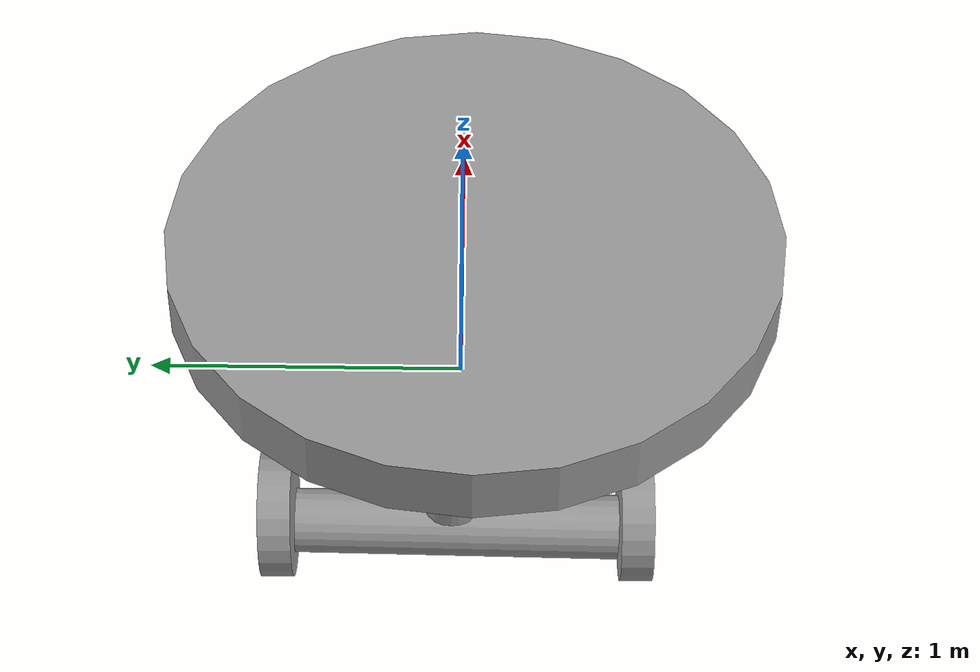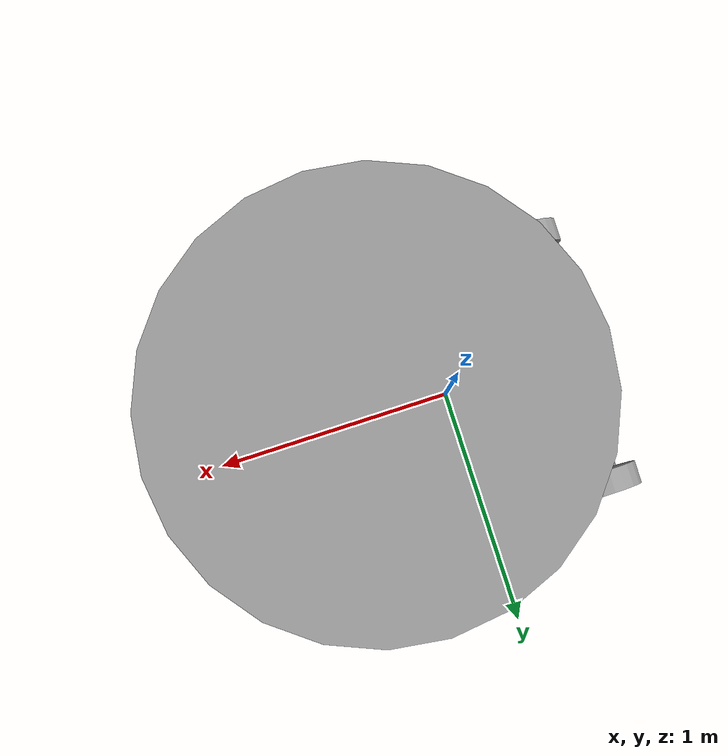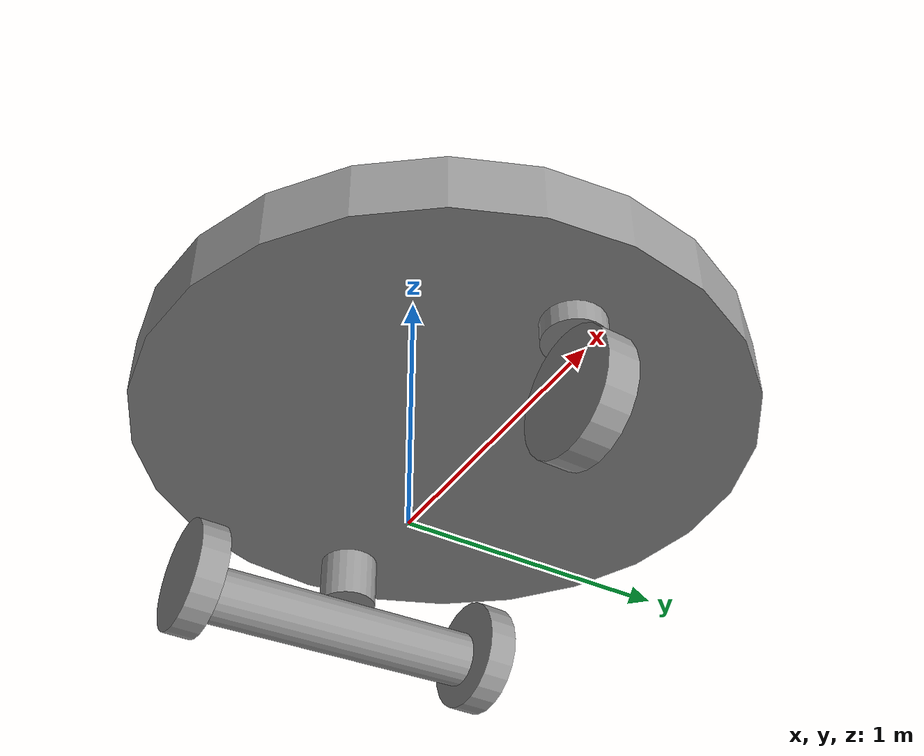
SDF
<?xml version='1.0'?>
<sdf version='1.6'>
  <model name='myRobot'>
    <link name='link_0'>
      <pose frame=''>-0.499455 0.563736 -0.119581 -1.587 0 0</pose>
      <inertial>
        <mass>1</mass>
        <inertia>
          <ixx>0.145833</ixx>
          <ixy>0</ixy>
          <ixz>0</ixz>
          <iyy>0.145833</iyy>
          <iyz>0</iyz>
          <izz>0.125</izz>
        </inertia>
        <pose frame=''>0 0 0 0 -0 0</pose>
      </inertial>
      <gravity>1</gravity>
      <self_collide>0</self_collide>
      <kinematic>0</kinematic>
      <visual name='visual'>
        <pose frame=''>0 0 0 0 -0 0</pose>
        <geometry>
          <cylinder>
            <radius>0.2</radius>
            <length>0.1</length>
          </cylinder>
        </geometry>
        <material>
          <lighting>1</lighting>
          <script>
            <uri>file://media/materials/scripts/gazebo.material</uri>
            <name>Gazebo/Grey</name>
          </script>
          <shader type='pixel'>
            <normal_map>__default__</normal_map>
          </shader>
          <ambient>0.3 0.3 0.3 1</ambient>
          <diffuse>0.7 0.7 0.7 1</diffuse>
          <specular>0.01 0.01 0.01 1</specular>
          <emissive>0 0 0 1</emissive>
        </material>
        <transparency>0</transparency>
        <cast_shadows>1</cast_shadows>
      </visual>
      <collision name='collision'>
        <laser_retro>0</laser_retro>
        <max_contacts>10</max_contacts>
        <pose frame=''>0 0 0 0 -0 0</pose>
        <geometry>
          <cylinder>
            <radius>0.2</radius>
            <length>0.1</length>
          </cylinder>
        </geometry>
        <surface>
          <friction>
            <ode>
              <mu>1</mu>
              <mu2>1</mu2>
              <fdir1>0 0 0</fdir1>
              <slip1>0</slip1>
              <slip2>0</slip2>
            </ode>
            <torsional>
              <coefficient>1</coefficient>
              <patch_radius>0</patch_radius>
              <surface_radius>0</surface_radius>
              <use_patch_radius>1</use_patch_radius>
              <ode>
                <slip>0</slip>
              </ode>
            </torsional>
          </friction>
          <bounce>
            <restitution_coefficient>0</restitution_coefficient>
            <threshold>1e+06</threshold>
          </bounce>
          <contact>
            <collide_without_contact>0</collide_without_contact>
            <collide_without_contact_bitmask>1</collide_without_contact_bitmask>
            <collide_bitmask>1</collide_bitmask>
            <ode>
              <soft_cfm>0</soft_cfm>
              <soft_erp>0.2</soft_erp>
              <kp>1e+13</kp>
              <kd>1</kd>
              <max_vel>0.01</max_vel>
              <min_depth>0</min_depth>
            </ode>
            <bullet>
              <split_impulse>1</split_impulse>
              <split_impulse_penetration_threshold>-0.01</split_impulse_penetration_threshold>
              <soft_cfm>0</soft_cfm>
              <soft_erp>0.2</soft_erp>
              <kp>1e+13</kp>
              <kd>1</kd>
            </bullet>
          </contact>
        </surface>
      </collision>
    </link>
    <link name='link_0_clone'>
      <pose frame=''>-0.499455 -0.546652 -0.12031 -1.587 0 0</pose>
      <inertial>
        <mass>1</mass>
        <inertia>
          <ixx>0.145833</ixx>
          <ixy>0</ixy>
          <ixz>0</ixz>
          <iyy>0.145833</iyy>
          <iyz>0</iyz>
          <izz>0.125</izz>
        </inertia>
        <pose frame=''>0 0 0 0 -0 0</pose>
      </inertial>
      <self_collide>0</self_collide>
      <kinematic>0</kinematic>
      <visual name='visual'>
        <pose frame=''>0 0 0 0 -0 0</pose>
        <geometry>
          <cylinder>
            <radius>0.2</radius>
            <length>0.1</length>
          </cylinder>
        </geometry>
        <material>
          <lighting>1</lighting>
          <script>
            <uri>file://media/materials/scripts/gazebo.material</uri>
            <name>Gazebo/Grey</name>
          </script>
          <shader type='pixel'>
            <normal_map>__default__</normal_map>
          </shader>
          <ambient>0.3 0.3 0.3 1</ambient>
          <diffuse>0.7 0.7 0.7 1</diffuse>
          <specular>0.01 0.01 0.01 1</specular>
          <emissive>0 0 0 1</emissive>
        </material>
        <transparency>0</transparency>
        <cast_shadows>1</cast_shadows>
      </visual>
      <collision name='collision'>
        <laser_retro>0</laser_retro>
        <max_contacts>10</max_contacts>
        <pose frame=''>0 0 0 0 -0 0</pose>
        <geometry>
          <cylinder>
            <radius>0.2</radius>
            <length>0.1</length>
          </cylinder>
        </geometry>
        <surface>
          <friction>
            <ode>
              <mu>1</mu>
              <mu2>1</mu2>
              <fdir1>0 0 0</fdir1>
              <slip1>0</slip1>
              <slip2>0</slip2>
            </ode>
            <torsional>
              <coefficient>1</coefficient>
              <patch_radius>0</patch_radius>
              <surface_radius>0</surface_radius>
              <use_patch_radius>1</use_patch_radius>
              <ode>
                <slip>0</slip>
              </ode>
            </torsional>
          </friction>
          <bounce>
            <restitution_coefficient>0</restitution_coefficient>
            <threshold>1e+06</threshold>
          </bounce>
          <contact>
            <collide_without_contact>0</collide_without_contact>
            <collide_without_contact_bitmask>1</collide_without_contact_bitmask>
            <collide_bitmask>1</collide_bitmask>
            <ode>
              <soft_cfm>0</soft_cfm>
              <soft_erp>0.2</soft_erp>
              <kp>1e+13</kp>
              <kd>1</kd>
              <max_vel>0.01</max_vel>
              <min_depth>0</min_depth>
            </ode>
            <bullet>
              <split_impulse>1</split_impulse>
              <split_impulse_penetration_threshold>-0.01</split_impulse_penetration_threshold>
              <soft_cfm>0</soft_cfm>
              <soft_erp>0.2</soft_erp>
              <kp>1e+13</kp>
              <kd>1</kd>
            </bullet>
          </contact>
        </surface>
      </collision>
    </link>
    <link name='link_0_clone_0'>
      <pose frame=''>0.969821 -0.006851 -0.155114 -1.587 0 0</pose>
      <inertial>
        <mass>1</mass>
        <inertia>
          <ixx>0.145833</ixx>
          <ixy>0</ixy>
          <ixz>0</ixz>
          <iyy>0.145833</iyy>
          <iyz>0</iyz>
          <izz>0.125</izz>
        </inertia>
        <pose frame=''>0 0 0 0 -0 0</pose>
      </inertial>
      <self_collide>0</self_collide>
      <kinematic>0</kinematic>
      <visual name='visual'>
        <pose frame=''>0 0 0 0 -0 0</pose>
        <geometry>
          <cylinder>
            <radius>0.2</radius>
            <length>0.1</length>
          </cylinder>
        </geometry>
        <material>
          <lighting>1</lighting>
          <script>
            <uri>file://media/materials/scripts/gazebo.material</uri>
            <name>Gazebo/Grey</name>
          </script>
          <shader type='pixel'>
            <normal_map>__default__</normal_map>
          </shader>
          <ambient>0.3 0.3 0.3 1</ambient>
          <diffuse>0.7 0.7 0.7 1</diffuse>
          <specular>0.01 0.01 0.01 1</specular>
          <emissive>0 0 0 1</emissive>
        </material>
        <transparency>0</transparency>
        <cast_shadows>1</cast_shadows>
      </visual>
      <collision name='collision'>
        <laser_retro>0</laser_retro>
        <max_contacts>10</max_contacts>
        <pose frame=''>0 0 0 0 -0 0</pose>
        <geometry>
          <cylinder>
            <radius>0.2</radius>
            <length>0.1</length>
          </cylinder>
        </geometry>
        <surface>
          <friction>
            <ode>
              <mu>1</mu>
              <mu2>1</mu2>
              <fdir1>0 0 0</fdir1>
              <slip1>0</slip1>
              <slip2>0</slip2>
            </ode>
            <torsional>
              <coefficient>1</coefficient>
              <patch_radius>0</patch_radius>
              <surface_radius>0</surface_radius>
              <use_patch_radius>1</use_patch_radius>
              <ode>
                <slip>0</slip>
              </ode>
            </torsional>
          </friction>
          <bounce>
            <restitution_coefficient>0</restitution_coefficient>
            <threshold>1e+06</threshold>
          </bounce>
          <contact>
            <collide_without_contact>0</collide_without_contact>
            <collide_without_contact_bitmask>1</collide_without_contact_bitmask>
            <collide_bitmask>1</collide_bitmask>
            <ode>
              <soft_cfm>0</soft_cfm>
              <soft_erp>0.2</soft_erp>
              <kp>1e+13</kp>
              <kd>1</kd>
              <max_vel>0.01</max_vel>
              <min_depth>0</min_depth>
            </ode>
            <bullet>
              <split_impulse>1</split_impulse>
              <split_impulse_penetration_threshold>-0.01</split_impulse_penetration_threshold>
              <soft_cfm>0</soft_cfm>
              <soft_erp>0.2</soft_erp>
              <kp>1e+13</kp>
              <kd>1</kd>
            </bullet>
          </contact>
        </surface>
      </collision>
    </link>
    <link name='link_1'>
      <pose frame=''>-0.519455 0.008881 -0.140307 1.58773 -0 0</pose>
      <inertial>
        <mass>1</mass>
        <inertia>
          <ixx>0.145833</ixx>
          <ixy>0</ixy>
          <ixz>0</ixz>
          <iyy>0.145833</iyy>
          <iyz>0</iyz>
          <izz>0.125</izz>
        </inertia>
        <pose frame=''>0 0 0 0 -0 0</pose>
      </inertial>
      <gravity>1</gravity>
      <self_collide>0</self_collide>
      <kinematic>0</kinematic>
      <visual name='visual'>
        <pose frame=''>0 0 0 0 -0 0</pose>
        <geometry>
          <cylinder>
            <radius>0.1</radius>
            <length>1</length>
          </cylinder>
        </geometry>
        <material>
          <lighting>1</lighting>
          <script>
            <uri>file://media/materials/scripts/gazebo.material</uri>
            <name>Gazebo/Grey</name>
          </script>
          <shader type='pixel'>
            <normal_map>__default__</normal_map>
          </shader>
          <ambient>0.3 0.3 0.3 1</ambient>
          <diffuse>0.7 0.7 0.7 1</diffuse>
          <specular>0.01 0.01 0.01 1</specular>
          <emissive>0 0 0 1</emissive>
        </material>
        <transparency>0</transparency>
        <cast_shadows>1</cast_shadows>
      </visual>
      <collision name='collision'>
        <laser_retro>0</laser_retro>
        <max_contacts>10</max_contacts>
        <pose frame=''>0 0 0 0 -0 0</pose>
        <geometry>
          <cylinder>
            <radius>0.1</radius>
            <length>1</length>
          </cylinder>
        </geometry>
        <surface>
          <friction>
            <ode>
              <mu>1</mu>
              <mu2>1</mu2>
              <fdir1>0 0 0</fdir1>
              <slip1>0</slip1>
              <slip2>0</slip2>
            </ode>
            <torsional>
              <coefficient>1</coefficient>
              <patch_radius>0</patch_radius>
              <surface_radius>0</surface_radius>
              <use_patch_radius>1</use_patch_radius>
              <ode>
                <slip>0</slip>
              </ode>
            </torsional>
          </friction>
          <bounce>
            <restitution_coefficient>0</restitution_coefficient>
            <threshold>1e+06</threshold>
          </bounce>
          <contact>
            <collide_without_contact>0</collide_without_contact>
            <collide_without_contact_bitmask>1</collide_without_contact_bitmask>
            <collide_bitmask>1</collide_bitmask>
            <ode>
              <soft_cfm>0</soft_cfm>
              <soft_erp>0.2</soft_erp>
              <kp>1e+13</kp>
              <kd>1</kd>
              <max_vel>0.01</max_vel>
              <min_depth>0</min_depth>
            </ode>
            <bullet>
              <split_impulse>1</split_impulse>
              <split_impulse_penetration_threshold>-0.01</split_impulse_penetration_threshold>
              <soft_cfm>0</soft_cfm>
              <soft_erp>0.2</soft_erp>
              <kp>1e+13</kp>
              <kd>1</kd>
            </bullet>
          </contact>
        </surface>
      </collision>
    </link>
    <link name='link_3'>
      <pose frame=''>0.299446 -0.037954 0.216038 0 -0 0</pose>
      <inertial>
        <mass>1</mass>
        <inertia>
          <ixx>0.145833</ixx>
          <ixy>0</ixy>
          <ixz>0</ixz>
          <iyy>0.145833</iyy>
          <iyz>0</iyz>
          <izz>0.125</izz>
        </inertia>
        <pose frame=''>0 0 0 0 -0 0</pose>
      </inertial>
      <gravity>1</gravity>
      <self_collide>0</self_collide>
      <kinematic>0</kinematic>
      <visual name='visual'>
        <pose frame=''>0 0 0 0 -0 0</pose>
        <geometry>
          <cylinder>
            <radius>1</radius>
            <length>0.2</length>
          </cylinder>
        </geometry>
        <material>
          <lighting>1</lighting>
          <script>
            <uri>file://media/materials/scripts/gazebo.material</uri>
            <name>Gazebo/Grey</name>
          </script>
          <shader type='pixel'>
            <normal_map>__default__</normal_map>
          </shader>
          <ambient>0.3 0.3 0.3 1</ambient>
          <diffuse>0.7 0.7 0.7 1</diffuse>
          <specular>0.01 0.01 0.01 1</specular>
          <emissive>0 0 0 1</emissive>
        </material>
        <transparency>0</transparency>
        <cast_shadows>1</cast_shadows>
      </visual>
      <collision name='collision'>
        <laser_retro>0</laser_retro>
        <max_contacts>10</max_contacts>
        <pose frame=''>0 0 0 0 -0 0</pose>
        <geometry>
          <cylinder>
            <radius>1</radius>
            <length>0.2</length>
          </cylinder>
        </geometry>
        <surface>
          <friction>
            <ode>
              <mu>1</mu>
              <mu2>1</mu2>
              <fdir1>0 0 0</fdir1>
              <slip1>0</slip1>
              <slip2>0</slip2>
            </ode>
            <torsional>
              <coefficient>1</coefficient>
              <patch_radius>0</patch_radius>
              <surface_radius>0</surface_radius>
              <use_patch_radius>1</use_patch_radius>
              <ode>
                <slip>0</slip>
              </ode>
            </torsional>
          </friction>
          <bounce>
            <restitution_coefficient>0</restitution_coefficient>
            <threshold>1e+06</threshold>
          </bounce>
          <contact>
            <collide_without_contact>0</collide_without_contact>
            <collide_without_contact_bitmask>1</collide_without_contact_bitmask>
            <collide_bitmask>1</collide_bitmask>
            <ode>
              <soft_cfm>0</soft_cfm>
              <soft_erp>0.2</soft_erp>
              <kp>1e+13</kp>
              <kd>1</kd>
              <max_vel>0.01</max_vel>
              <min_depth>0</min_depth>
            </ode>
            <bullet>
              <split_impulse>1</split_impulse>
              <split_impulse_penetration_threshold>-0.01</split_impulse_penetration_threshold>
              <soft_cfm>0</soft_cfm>
              <soft_erp>0.2</soft_erp>
              <kp>1e+13</kp>
              <kd>1</kd>
            </bullet>
          </contact>
        </surface>
      </collision>
    </link>
    <link name='link_4'>
      <pose frame=''>0.968387 -0.007154 0.14567 0 -0 0</pose>
      <inertial>
        <mass>1</mass>
        <inertia>
          <ixx>0.145833</ixx>
          <ixy>0</ixy>
          <ixz>0</ixz>
          <iyy>0.145833</iyy>
          <iyz>0</iyz>
          <izz>0.125</izz>
        </inertia>
        <pose frame=''>0 0 0 0 -0 0</pose>
      </inertial>
      <gravity>1</gravity>
      <self_collide>0</self_collide>
      <kinematic>0</kinematic>
      <visual name='visual'>
        <pose frame=''>0 0 0 0 -0 0</pose>
        <geometry>
          <cylinder>
            <radius>0.1</radius>
            <length>0.2</length>
          </cylinder>
        </geometry>
        <material>
          <lighting>1</lighting>
          <script>
            <uri>file://media/materials/scripts/gazebo.material</uri>
            <name>Gazebo/Grey</name>
          </script>
          <shader type='pixel'>
            <normal_map>__default__</normal_map>
          </shader>
          <ambient>0.3 0.3 0.3 1</ambient>
          <diffuse>0.7 0.7 0.7 1</diffuse>
          <specular>0.01 0.01 0.01 1</specular>
          <emissive>0 0 0 1</emissive>
        </material>
        <transparency>0</transparency>
        <cast_shadows>1</cast_shadows>
      </visual>
      <collision name='collision'>
        <laser_retro>0</laser_retro>
        <max_contacts>10</max_contacts>
        <pose frame=''>0 0 0 0 -0 0</pose>
        <geometry>
          <cylinder>
            <radius>0.1</radius>
            <length>0.2</length>
          </cylinder>
        </geometry>
        <surface>
          <friction>
            <ode>
              <mu>1</mu>
              <mu2>1</mu2>
              <fdir1>0 0 0</fdir1>
              <slip1>0</slip1>
              <slip2>0</slip2>
            </ode>
            <torsional>
              <coefficient>1</coefficient>
              <patch_radius>0</patch_radius>
              <surface_radius>0</surface_radius>
              <use_patch_radius>1</use_patch_radius>
              <ode>
                <slip>0</slip>
              </ode>
            </torsional>
          </friction>
          <bounce>
            <restitution_coefficient>0</restitution_coefficient>
            <threshold>1e+06</threshold>
          </bounce>
          <contact>
            <collide_without_contact>0</collide_without_contact>
            <collide_without_contact_bitmask>1</collide_without_contact_bitmask>
            <collide_bitmask>1</collide_bitmask>
            <ode>
              <soft_cfm>0</soft_cfm>
              <soft_erp>0.2</soft_erp>
              <kp>1e+13</kp>
              <kd>1</kd>
              <max_vel>0.01</max_vel>
              <min_depth>0</min_depth>
            </ode>
            <bullet>
              <split_impulse>1</split_impulse>
              <split_impulse_penetration_threshold>-0.01</split_impulse_penetration_threshold>
              <soft_cfm>0</soft_cfm>
              <soft_erp>0.2</soft_erp>
              <kp>1e+13</kp>
              <kd>1</kd>
            </bullet>
          </contact>
        </surface>
      </collision>
    </link>
    <link name='link_4_clone'>
      <pose frame=''>-0.4932 0.025 0.090218 0 -0 0</pose>
      <inertial>
        <mass>1</mass>
        <inertia>
          <ixx>0.145833</ixx>
          <ixy>0</ixy>
          <ixz>0</ixz>
          <iyy>0.145833</iyy>
          <iyz>0</iyz>
          <izz>0.125</izz>
        </inertia>
        <pose frame=''>0 0 0 0 -0 0</pose>
      </inertial>
      <self_collide>0</self_collide>
      <kinematic>0</kinematic>
      <gravity>1</gravity>
      <visual name='visual'>
        <pose frame=''>0 0 0 0 -0 0</pose>
        <geometry>
          <cylinder>
            <radius>0.1</radius>
            <length>0.3</length>
          </cylinder>
        </geometry>
        <material>
          <lighting>1</lighting>
          <script>
            <uri>file://media/materials/scripts/gazebo.material</uri>
            <name>Gazebo/Grey</name>
          </script>
          <shader type='pixel'>
            <normal_map>__default__</normal_map>
          </shader>
          <ambient>0.3 0.3 0.3 1</ambient>
          <diffuse>0.7 0.7 0.7 1</diffuse>
          <specular>0.01 0.01 0.01 1</specular>
          <emissive>0 0 0 1</emissive>
        </material>
        <transparency>0</transparency>
        <cast_shadows>1</cast_shadows>
      </visual>
      <collision name='collision'>
        <laser_retro>0</laser_retro>
        <max_contacts>10</max_contacts>
        <pose frame=''>0 0 0 0 -0 0</pose>
        <geometry>
          <cylinder>
            <radius>0.1</radius>
            <length>0.3</length>
          </cylinder>
        </geometry>
        <surface>
          <friction>
            <ode>
              <mu>1</mu>
              <mu2>1</mu2>
              <fdir1>0 0 0</fdir1>
              <slip1>0</slip1>
              <slip2>0</slip2>
            </ode>
            <torsional>
              <coefficient>1</coefficient>
              <patch_radius>0</patch_radius>
              <surface_radius>0</surface_radius>
              <use_patch_radius>1</use_patch_radius>
              <ode>
                <slip>0</slip>
              </ode>
            </torsional>
          </friction>
          <bounce>
            <restitution_coefficient>0</restitution_coefficient>
            <threshold>1e+06</threshold>
          </bounce>
          <contact>
            <collide_without_contact>0</collide_without_contact>
            <collide_without_contact_bitmask>1</collide_without_contact_bitmask>
            <collide_bitmask>1</collide_bitmask>
            <ode>
              <soft_cfm>0</soft_cfm>
              <soft_erp>0.2</soft_erp>
              <kp>1e+13</kp>
              <kd>1</kd>
              <max_vel>0.01</max_vel>
              <min_depth>0</min_depth>
            </ode>
            <bullet>
              <split_impulse>1</split_impulse>
              <split_impulse_penetration_threshold>-0.01</split_impulse_penetration_threshold>
              <soft_cfm>0</soft_cfm>
              <soft_erp>0.2</soft_erp>
              <kp>1e+13</kp>
              <kd>1</kd>
            </bullet>
          </contact>
        </surface>
      </collision>
    </link>
    <joint name='link_0_clone_JOINT_1' type='revolute'>
      <parent>link_1</parent>
      <child>link_0_clone</child>
      <pose frame=''>0 0 0 0 -0 0</pose>
      <axis>
        <xyz>0 0 1</xyz>
        <use_parent_model_frame>0</use_parent_model_frame>
        <limit>
          <lower>-1.79769e+308</lower>
          <upper>1.79769e+308</upper>
          <effort>-1</effort>
          <velocity>-1</velocity>
        </limit>
        <dynamics>
          <spring_reference>0</spring_reference>
          <spring_stiffness>0</spring_stiffness>
          <damping>0</damping>
        </dynamics>
      </axis>
      <physics>
        <ode>
          <limit>
            <cfm>0</cfm>
            <erp>0.2</erp>
          </limit>
          <suspension>
            <cfm>0</cfm>
            <erp>0.2</erp>
          </suspension>
        </ode>
      </physics>
    </joint>
    <joint name='link_1_JOINT_0' type='revolute'>
      <parent>link_1</parent>
      <child>link_0</child>
      <pose frame=''>0 0 0 0 -0 0</pose>
      <axis>
        <xyz>0 0 1</xyz>
        <use_parent_model_frame>0</use_parent_model_frame>
        <limit>
          <lower>-1.79769e+308</lower>
          <upper>1.79769e+308</upper>
          <effort>-1</effort>
          <velocity>-1</velocity>
        </limit>
        <dynamics>
          <spring_reference>0</spring_reference>
          <spring_stiffness>0</spring_stiffness>
          <damping>0</damping>
        </dynamics>
      </axis>
      <physics>
        <ode>
          <limit>
            <cfm>0</cfm>
            <erp>0.2</erp>
          </limit>
          <suspension>
            <cfm>0</cfm>
            <erp>0.2</erp>
          </suspension>
        </ode>
      </physics>
    </joint>
    <joint name='link_3_JOINT_5' type='fixed'>
      <parent>link_3</parent>
      <child>link_4_clone</child>
      <pose frame=''>0 0 0 0 -0 0</pose>
      <physics>
        <ode>
          <limit>
            <cfm>0</cfm>
            <erp>0.2</erp>
          </limit>
          <suspension>
            <cfm>0</cfm>
            <erp>0.2</erp>
          </suspension>
        </ode>
      </physics>
    </joint>
    <joint name='link_4_JOINT_3' type='revolute'>
      <parent>link_4</parent>
      <child>link_0_clone_0</child>
      <pose frame=''>0 0 0 0 -0 0</pose>
      <axis>
        <xyz>0 0 1</xyz>
        <use_parent_model_frame>0</use_parent_model_frame>
        <limit>
          <lower>-1.79769e+308</lower>
          <upper>1.79769e+308</upper>
          <effort>-1</effort>
          <velocity>-1</velocity>
        </limit>
        <dynamics>
          <spring_reference>0</spring_reference>
          <spring_stiffness>0</spring_stiffness>
          <damping>0</damping>
        </dynamics>
      </axis>
      <physics>
        <ode>
          <limit>
            <cfm>0</cfm>
            <erp>0.2</erp>
          </limit>
          <suspension>
            <cfm>0</cfm>
            <erp>0.2</erp>
          </suspension>
        </ode>
      </physics>
    </joint>
    <joint name='link_4_JOINT_8' type='revolute'>
      <parent>link_4</parent>
      <child>link_0_clone_0</child>
      <pose frame=''>0 0 0 0 -0 0</pose>
      <axis>
        <xyz>0 1 0</xyz>
        <use_parent_model_frame>0</use_parent_model_frame>
        <limit>
          <lower>-1.79769e+308</lower>
          <upper>1.79769e+308</upper>
          <effort>-1</effort>
          <velocity>-1</velocity>
        </limit>
        <dynamics>
          <spring_reference>0</spring_reference>
          <spring_stiffness>0</spring_stiffness>
          <damping>0</damping>
        </dynamics>
      </axis>
      <physics>
        <ode>
          <limit>
            <cfm>0</cfm>
            <erp>0.2</erp>
          </limit>
          <suspension>
            <cfm>0</cfm>
            <erp>0.2</erp>
          </suspension>
        </ode>
      </physics>
    </joint>
    <joint name='link_4_clone_JOINT_6' type='fixed'>
      <parent>link_4_clone</parent>
      <child>link_1</child>
      <pose frame=''>0 0 0 0 -0 0</pose>
      <physics>
        <ode>
          <limit>
            <cfm>0</cfm>
            <erp>0.2</erp>
          </limit>
          <suspension>
            <cfm>0</cfm>
            <erp>0.2</erp>
          </suspension>
        </ode>
      </physics>
    </joint>
    <static>0</static>
    <allow_auto_disable>1</allow_auto_disable>
  </model>
</sdf>
